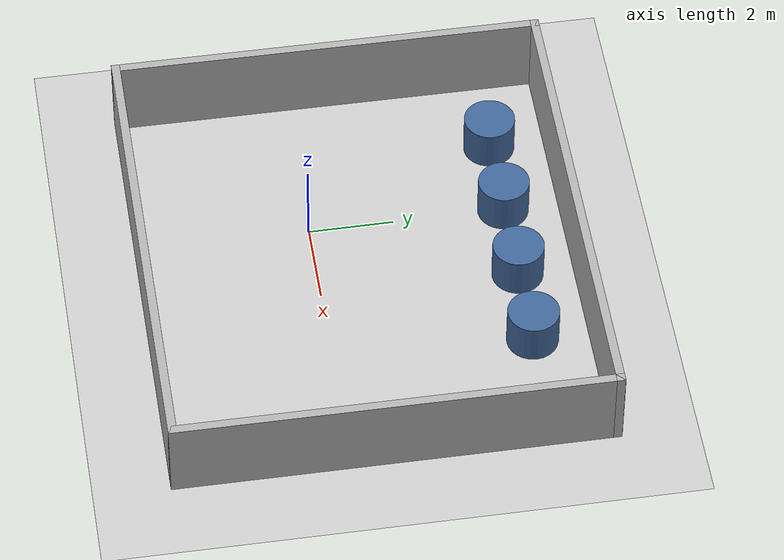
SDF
<?xml version="1.0" ?>
<!-- Flat floor, inside an 11 x 10 m walled room with a row of 4 round pillars, so lidar odometry has structure to match against. Generated by scripts/make_surface_worlds.py. -->
<sdf version="1.9">
  <world name="empty_ground">
    <physics name="1ms" type="ignored">
      <max_step_size>0.001</max_step_size>
      <real_time_factor>1.0</real_time_factor>
    </physics>
    <plugin filename="gz-sim-physics-system" name="gz::sim::systems::Physics"/>
    <plugin filename="gz-sim-user-commands-system" name="gz::sim::systems::UserCommands"/>
    <plugin filename="gz-sim-scene-broadcaster-system" name="gz::sim::systems::SceneBroadcaster"/>
    <plugin filename="gz-sim-sensors-system" name="gz::sim::systems::Sensors">
      <render_engine>ogre2</render_engine>
    </plugin>
    <plugin filename="gz-sim-imu-system" name="gz::sim::systems::Imu"/>

    <light type="directional" name="sun">
      <cast_shadows>true</cast_shadows>
      <pose>0 0 10 0 0 0</pose>
      <diffuse>0.8 0.8 0.8 1</diffuse>
      <specular>0.2 0.2 0.2 1</specular>
      <direction>-0.5 0.1 -0.9</direction>
    </light>

    <model name="ground_plane">
      <static>true</static>
      <link name="link">
        <collision name="collision">
          <geometry><plane><normal>0 0 1</normal><size>100 100</size></plane></geometry>
          <surface>
            <friction>
              <ode><mu>1.5</mu><mu2>1.5</mu2></ode>
              <torsional><coefficient>0.0</coefficient></torsional>
            </friction>
          </surface>
        </collision>
        <visual name="visual">
          <geometry><plane><normal>0 0 1</normal><size>100 100</size></plane></geometry>
          <material>
            <ambient>0.8 0.8 0.8 1</ambient>
            <diffuse>0.8 0.8 0.8 1</diffuse>
          </material>
        </visual>
      </link>
    </model>

    <model name="wall_south">
      <static>true</static>
      <pose>1.500 -4.000 1.000 0 0 0</pose>
      <link name="link">
        <collision name="collision"><geometry><box><size>11.2 0.2 2.0</size></box></geometry></collision>
        <visual name="visual"><geometry><box><size>11.2 0.2 2.0</size></box></geometry>
          <material><ambient>0.6 0.6 0.6 1</ambient><diffuse>0.7 0.7 0.7 1</diffuse></material>
        </visual>
      </link>
    </model>

    <model name="wall_north">
      <static>true</static>
      <pose>1.500 6.000 1.000 0 0 0</pose>
      <link name="link">
        <collision name="collision"><geometry><box><size>11.2 0.2 2.0</size></box></geometry></collision>
        <visual name="visual"><geometry><box><size>11.2 0.2 2.0</size></box></geometry>
          <material><ambient>0.6 0.6 0.6 1</ambient><diffuse>0.7 0.7 0.7 1</diffuse></material>
        </visual>
      </link>
    </model>

    <model name="wall_west">
      <static>true</static>
      <pose>-4.000 1.000 1.000 0 0 0</pose>
      <link name="link">
        <collision name="collision"><geometry><box><size>0.2 10.2 2.0</size></box></geometry></collision>
        <visual name="visual"><geometry><box><size>0.2 10.2 2.0</size></box></geometry>
          <material><ambient>0.6 0.6 0.6 1</ambient><diffuse>0.7 0.7 0.7 1</diffuse></material>
        </visual>
      </link>
    </model>

    <model name="wall_east">
      <static>true</static>
      <pose>7.000 1.000 1.000 0 0 0</pose>
      <link name="link">
        <collision name="collision"><geometry><box><size>0.2 10.2 2.0</size></box></geometry></collision>
        <visual name="visual"><geometry><box><size>0.2 10.2 2.0</size></box></geometry>
          <material><ambient>0.6 0.6 0.6 1</ambient><diffuse>0.7 0.7 0.7 1</diffuse></material>
        </visual>
      </link>
    </model>

    <model name="pillar_1">
      <static>true</static>
      <pose>-2.000 4.600 0.500 0 0 0</pose>
      <link name="link">
        <collision name="collision"><geometry><cylinder><radius>0.6</radius><length>1.0</length></cylinder></geometry></collision>
        <visual name="visual"><geometry><cylinder><radius>0.6</radius><length>1.0</length></cylinder></geometry>
          <material><ambient>0.2 0.35 0.5 1</ambient><diffuse>0.25 0.4 0.6 1</diffuse></material>
        </visual>
      </link>
    </model>

    <model name="pillar_2">
      <static>true</static>
      <pose>0.000 4.600 0.500 0 0 0</pose>
      <link name="link">
        <collision name="collision"><geometry><cylinder><radius>0.6</radius><length>1.0</length></cylinder></geometry></collision>
        <visual name="visual"><geometry><cylinder><radius>0.6</radius><length>1.0</length></cylinder></geometry>
          <material><ambient>0.2 0.35 0.5 1</ambient><diffuse>0.25 0.4 0.6 1</diffuse></material>
        </visual>
      </link>
    </model>

    <model name="pillar_3">
      <static>true</static>
      <pose>2.000 4.600 0.500 0 0 0</pose>
      <link name="link">
        <collision name="collision"><geometry><cylinder><radius>0.6</radius><length>1.0</length></cylinder></geometry></collision>
        <visual name="visual"><geometry><cylinder><radius>0.6</radius><length>1.0</length></cylinder></geometry>
          <material><ambient>0.2 0.35 0.5 1</ambient><diffuse>0.25 0.4 0.6 1</diffuse></material>
        </visual>
      </link>
    </model>

    <model name="pillar_4">
      <static>true</static>
      <pose>4.000 4.600 0.500 0 0 0</pose>
      <link name="link">
        <collision name="collision"><geometry><cylinder><radius>0.6</radius><length>1.0</length></cylinder></geometry></collision>
        <visual name="visual"><geometry><cylinder><radius>0.6</radius><length>1.0</length></cylinder></geometry>
          <material><ambient>0.2 0.35 0.5 1</ambient><diffuse>0.25 0.4 0.6 1</diffuse></material>
        </visual>
      </link>
    </model>

  </world>
</sdf>
